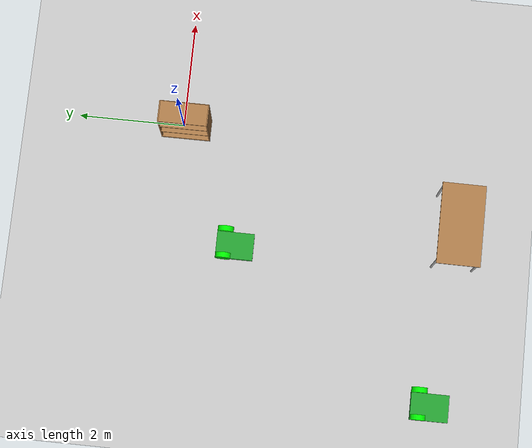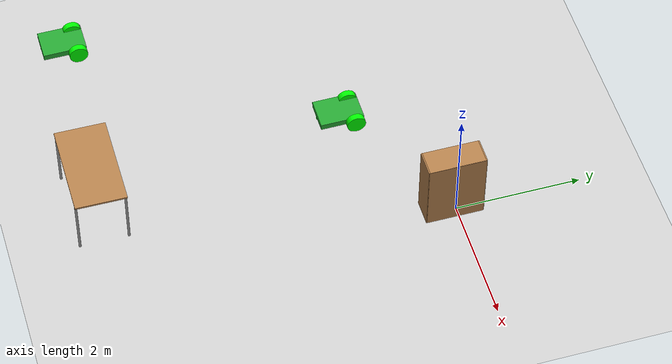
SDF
<sdf version="1.6">
 <world name="default">
  <model name="ground_plane">
   <static>1</static>
   <link name="link">
    <collision name="collision">
     <geometry><plane><normal>0 0 1</normal><size>100 100</size></plane></geometry>
     <surface>
      <contact><collide_bitmask>65535</collide_bitmask></contact>
      <friction><ode><mu>100</mu><mu2>50</mu2></ode></friction>
     </surface>
    </collision>
    <visual name="visual">
     <cast_shadows>0</cast_shadows>
     <geometry><plane><normal>0 0 1</normal><size>100 100</size></plane></geometry>
     <material>
      <script><uri>file://media/materials/scripts/gazebo.material</uri><name>Gazebo/Grey</name></script>
     </material>
    </visual>
   </link>
  </model>
  <model name="bookshelf">
   <static>1</static>
   <link name="link">
    <inertial><mass>1</mass></inertial>
    <collision name="back">
     <pose>0 0.005 0.6 0 -0 0</pose>
     <geometry><box><size>0.9 0.01 1.2</size></box></geometry>
    </collision>
    <visual name="visual1">
     <pose>0 0.005 0.6 0 -0 0</pose>
     <geometry><box><size>0.9 0.01 1.2</size></box></geometry>
     <material>
      <script><uri>file://media/materials/scripts/gazebo.material</uri><name>Gazebo/Wood</name></script>
     </material>
    </visual>
    <collision name="left_side">
     <pose>0.45 -0.195 0.6 0 -0 0</pose>
     <geometry><box><size>0.02 0.4 1.2</size></box></geometry>
    </collision>
    <visual name="visual2">
     <pose>0.45 -0.195 0.6 0 -0 0</pose>
     <geometry><box><size>0.02 0.4 1.2</size></box></geometry>
     <material>
      <script><uri>file://media/materials/scripts/gazebo.material</uri><name>Gazebo/Wood</name></script>
     </material>
    </visual>
    <collision name="right_side">
     <pose>-0.45 -0.195 0.6 0 -0 0</pose>
     <geometry><box><size>0.02 0.4 1.2</size></box></geometry>
    </collision>
    <visual name="visual3">
     <pose>-0.45 -0.195 0.6 0 -0 0</pose>
     <geometry><box><size>0.02 0.4 1.2</size></box></geometry>
     <material>
      <script><uri>file://media/materials/scripts/gazebo.material</uri><name>Gazebo/Wood</name></script>
     </material>
    </visual>
    <collision name="bottom">
     <pose>0 -0.195 0.03 0 -0 0</pose>
     <geometry><box><size>0.88 0.4 0.06</size></box></geometry>
    </collision>
    <visual name="visual4">
     <pose>0 -0.195 0.03 0 -0 0</pose>
     <geometry><box><size>0.88 0.4 0.06</size></box></geometry>
     <material>
      <script><uri>file://media/materials/scripts/gazebo.material</uri><name>Gazebo/Wood</name></script>
     </material>
    </visual>
    <collision name="top">
     <pose>0 -0.195 1.19 0 -0 0</pose>
     <geometry><box><size>0.88 0.4 0.02</size></box></geometry>
    </collision>
    <visual name="visual5">
     <pose>0 -0.195 1.19 0 -0 0</pose>
     <geometry><box><size>0.88 0.4 0.02</size></box></geometry>
     <material>
      <script><uri>file://media/materials/scripts/gazebo.material</uri><name>Gazebo/Wood</name></script>
     </material>
    </visual>
    <collision name="low_shelf">
     <pose>0 -0.195 0.43 0 -0 0</pose>
     <geometry><box><size>0.88 0.4 0.02</size></box></geometry>
    </collision>
    <visual name="visual6">
     <pose>0 -0.195 0.43 0 -0 0</pose>
     <geometry><box><size>0.88 0.4 0.02</size></box></geometry>
     <material>
      <script><uri>file://media/materials/scripts/gazebo.material</uri><name>Gazebo/Wood</name></script>
     </material>
    </visual>
    <collision name="high_shelf">
     <pose>0 -0.195 0.8 0 -0 0</pose>
     <geometry><box><size>0.88 0.4 0.02</size></box></geometry>
    </collision>
    <visual name="visual7">
     <pose>0 -0.195 0.8 0 -0 0</pose>
     <geometry><box><size>0.88 0.4 0.02</size></box></geometry>
     <material>
      <script><uri>file://media/materials/scripts/gazebo.material</uri><name>Gazebo/Wood</name></script>
     </material>
    </visual>
   </link>
   <pose>0.137664 -0.059568 0 0 0 -1.5707</pose>
  </model>
  <model name="table_clone">
   <static>1</static>
   <link name="link">
    <collision name="surface">
     <pose>0 0 1 0 -0 0</pose>
     <geometry><box><size>1.5 0.8 0.03</size></box></geometry>
     <surface><friction><ode><mu>0.6</mu><mu2>0.6</mu2></ode></friction></surface>
    </collision>
    <visual name="visual1">
     <pose>0 0 1 0 -0 0</pose>
     <geometry><box><size>1.5 0.8 0.03</size></box></geometry>
     <material>
      <script><uri>file://media/materials/scripts/gazebo.material</uri><name>Gazebo/Wood</name></script>
     </material>
    </visual>
    <collision name="front_left_leg">
     <pose>0.68 0.38 0.5 0 -0 0</pose>
     <geometry><cylinder><radius>0.02</radius><length>1</length></cylinder></geometry>
    </collision>
    <visual name="front_left_leg">
     <pose>0.68 0.38 0.5 0 -0 0</pose>
     <geometry><cylinder><radius>0.02</radius><length>1</length></cylinder></geometry>
     <material>
      <script><uri>file://media/materials/scripts/gazebo.material</uri><name>Gazebo/Grey</name></script>
     </material>
    </visual>
    <collision name="front_right_leg">
     <pose>0.68 -0.38 0.5 0 -0 0</pose>
     <geometry><cylinder><radius>0.02</radius><length>1</length></cylinder></geometry>
    </collision>
    <visual name="front_right_leg">
     <pose>0.68 -0.38 0.5 0 -0 0</pose>
     <geometry><cylinder><radius>0.02</radius><length>1</length></cylinder></geometry>
     <material>
      <script><uri>file://media/materials/scripts/gazebo.material</uri><name>Gazebo/Grey</name></script>
     </material>
    </visual>
    <collision name="back_right_leg">
     <pose>-0.68 -0.38 0.5 0 -0 0</pose>
     <geometry><cylinder><radius>0.02</radius><length>1</length></cylinder></geometry>
    </collision>
    <visual name="back_right_leg">
     <pose>-0.68 -0.38 0.5 0 -0 0</pose>
     <geometry><cylinder><radius>0.02</radius><length>1</length></cylinder></geometry>
     <material>
      <script><uri>file://media/materials/scripts/gazebo.material</uri><name>Gazebo/Grey</name></script>
     </material>
    </visual>
    <collision name="back_left_leg">
     <pose>-0.68 0.38 0.5 0 -0 0</pose>
     <geometry><cylinder><radius>0.02</radius><length>1</length></cylinder></geometry>
    </collision>
    <visual name="back_left_leg">
     <pose>-0.68 0.38 0.5 0 -0 0</pose>
     <geometry><cylinder><radius>0.02</radius><length>1</length></cylinder></geometry>
     <material>
      <script><uri>file://media/materials/scripts/gazebo.material</uri><name>Gazebo/Grey</name></script>
     </material>
    </visual>
   </link>
   <pose>-1.56994 -5.29085 0 0 -0 3.13504</pose>
  </model>
  <model name="wheeledrobotv2.sdf">
   <link name="link_1">
    <inertial>
     <mass>1</mass>
     <inertia>
      <ixx>0.166667</ixx>
      <ixy>0</ixy>
      <ixz>0</ixz>
      <iyy>0.166667</iyy>
      <iyz>0</iyz>
      <izz>0.166667</izz>
     </inertia>
    </inertial>
    <pose>-0.01381 -0.025371 -0.009991 0 -0 0</pose>
    <visual name="visual">
     <pose>0 0 0.05 0 -0 0</pose>
     <geometry><box><size>0.5 0.7 0.1</size></box></geometry>
     <material>
      <lighting>1</lighting>
      <script><uri>file://media/materials/scripts/gazebo.material</uri><name>Gazebo/Green</name></script>
      <shader type="vertex"><normal_map>__default__</normal_map></shader>
      <ambient>0.3 0.3 0.3 1</ambient>
      <diffuse>0 1 0 1</diffuse>
      <specular>0.01 0.01 0.01 1</specular>
      <emissive>0 0 0 1</emissive>
     </material>
    </visual>
    <collision name="collision">
     <geometry><box><size>0.5 0.7 0.1</size></box></geometry>
     <surface>
      <friction>
       <ode><mu>1</mu><mu2>1</mu2><fdir1>0 0 0</fdir1><slip1>0</slip1><slip2>0</slip2></ode>
       <torsional>
        <coefficient>1</coefficient>
        <patch_radius>0</patch_radius>
        <surface_radius>0</surface_radius>
        <use_patch_radius>1</use_patch_radius>
        <ode><slip>0</slip></ode>
       </torsional>
      </friction>
      <bounce><restitution_coefficient>0</restitution_coefficient><threshold>1e+06</threshold></bounce>
      <contact>
       <collide_without_contact>0</collide_without_contact>
       <collide_without_contact_bitmask>1</collide_without_contact_bitmask>
       <collide_bitmask>1</collide_bitmask>
       <ode>
        <soft_cfm>0</soft_cfm>
        <soft_erp>0.2</soft_erp>
        <kp>1e+13</kp>
        <kd>1</kd>
        <max_vel>0.01</max_vel>
        <min_depth>0</min_depth>
       </ode>
       <bullet>
        <split_impulse>1</split_impulse>
        <split_impulse_penetration_threshold>-0.01</split_impulse_penetration_threshold>
        <soft_cfm>0</soft_cfm>
        <soft_erp>0.2</soft_erp>
        <kp>1e+13</kp>
        <kd>1</kd>
       </bullet>
      </contact>
     </surface>
    </collision>
   </link>
   <link name="link_2">
    <inertial>
     <mass>1</mass>
     <inertia><ixx>0.145833</ixx><ixy>0</ixy><ixz>0</ixz><iyy>0.145833</iyy><iyz>0</iyz><izz>0.125</izz></inertia>
    </inertial>
    <pose>0.28631 0.174629 0.034973 0 1.57 0</pose>
    <visual name="visual">
     <geometry><cylinder><radius>0.15</radius><length>0.1</length></cylinder></geometry>
     <material>
      <lighting>1</lighting>
      <script><uri>file://media/materials/scripts/gazebo.material</uri><name>Gazebo/Grey</name></script>
      <shader type="vertex"><normal_map>__default__</normal_map></shader>
      <ambient>0.3 0.3 0.3 1</ambient>
      <diffuse>0 1 0 1</diffuse>
      <specular>0.01 0.01 0.01 1</specular>
      <emissive>0 0 0 1</emissive>
     </material>
    </visual>
    <collision name="collision">
     <geometry><cylinder><radius>0.15</radius><length>0.1</length></cylinder></geometry>
     <surface>
      <friction>
       <ode><mu>1</mu><mu2>1</mu2><fdir1>0 0 0</fdir1><slip1>0</slip1><slip2>0</slip2></ode>
       <torsional>
        <coefficient>1</coefficient>
        <patch_radius>0</patch_radius>
        <surface_radius>0</surface_radius>
        <use_patch_radius>1</use_patch_radius>
        <ode><slip>0</slip></ode>
       </torsional>
      </friction>
      <bounce><restitution_coefficient>0</restitution_coefficient><threshold>1e+06</threshold></bounce>
      <contact>
       <collide_without_contact>0</collide_without_contact>
       <collide_without_contact_bitmask>1</collide_without_contact_bitmask>
       <collide_bitmask>1</collide_bitmask>
       <ode>
        <soft_cfm>0</soft_cfm>
        <soft_erp>0.2</soft_erp>
        <kp>1e+13</kp>
        <kd>1</kd>
        <max_vel>0.01</max_vel>
        <min_depth>0</min_depth>
       </ode>
       <bullet>
        <split_impulse>1</split_impulse>
        <split_impulse_penetration_threshold>-0.01</split_impulse_penetration_threshold>
        <soft_cfm>0</soft_cfm>
        <soft_erp>0.2</soft_erp>
        <kp>1e+13</kp>
        <kd>1</kd>
       </bullet>
      </contact>
     </surface>
    </collision>
   </link>
   <link name="link_2_clone">
    <inertial>
     <mass>1</mass>
     <inertia><ixx>0.145833</ixx><ixy>0</ixy><ixz>0</ixz><iyy>0.145833</iyy><iyz>0</iyz><izz>0.125</izz></inertia>
    </inertial>
    <pose>-0.213691 0.176112 0.035009 0 1.57 0</pose>
    <visual name="visual">
     <geometry><cylinder><radius>0.15</radius><length>0.1</length></cylinder></geometry>
     <material>
      <lighting>1</lighting>
      <script><uri>file://media/materials/scripts/gazebo.material</uri><name>Gazebo/Grey</name></script>
      <shader type="vertex"><normal_map>__default__</normal_map></shader>
      <ambient>0.3 0.3 0.3 1</ambient>
      <diffuse>0 1 0 1</diffuse>
      <specular>0.01 0.01 0.01 1</specular>
      <emissive>0 0 0 1</emissive>
     </material>
    </visual>
    <collision name="collision">
     <geometry><cylinder><radius>0.15</radius><length>0.1</length></cylinder></geometry>
     <surface>
      <friction>
       <ode><mu>1</mu><mu2>1</mu2><fdir1>0 0 0</fdir1><slip1>0</slip1><slip2>0</slip2></ode>
       <torsional>
        <coefficient>1</coefficient>
        <patch_radius>0</patch_radius>
        <surface_radius>0</surface_radius>
        <use_patch_radius>1</use_patch_radius>
        <ode><slip>0</slip></ode>
       </torsional>
      </friction>
      <bounce><restitution_coefficient>0</restitution_coefficient><threshold>1e+06</threshold></bounce>
      <contact>
       <collide_without_contact>0</collide_without_contact>
       <collide_without_contact_bitmask>1</collide_without_contact_bitmask>
       <collide_bitmask>1</collide_bitmask>
       <ode>
        <soft_cfm>0</soft_cfm>
        <soft_erp>0.2</soft_erp>
        <kp>1e+13</kp>
        <kd>1</kd>
        <max_vel>0.01</max_vel>
        <min_depth>0</min_depth>
       </ode>
       <bullet>
        <split_impulse>1</split_impulse>
        <split_impulse_penetration_threshold>-0.01</split_impulse_penetration_threshold>
        <soft_cfm>0</soft_cfm>
        <soft_erp>0.2</soft_erp>
        <kp>1e+13</kp>
        <kd>1</kd>
       </bullet>
      </contact>
     </surface>
    </collision>
   </link>
   <link name="link_3">
    <inertial>
     <mass>1</mass>
     <inertia><ixx>0.1</ixx><ixy>0</ixy><ixz>0</ixz><iyy>0.1</iyy><iyz>0</iyz><izz>0.1</izz></inertia>
    </inertial>
    <pose>-0.058809 -0.325371 -0.059991 0 -0 0</pose>
    <visual name="visual">
     <geometry><sphere><radius>0.05</radius></sphere></geometry>
     <material>
      <lighting>1</lighting>
      <script><uri>file://media/materials/scripts/gazebo.material</uri><name>Gazebo/Grey</name></script>
      <shader type="vertex"><normal_map>__default__</normal_map></shader>
      <ambient>0.3 0.3 0.3 1</ambient>
      <diffuse>0 1 0 1</diffuse>
      <specular>0.01 0.01 0.01 1</specular>
      <emissive>0 0 0 1</emissive>
     </material>
    </visual>
    <collision name="collision">
     <geometry><sphere><radius>0.05</radius></sphere></geometry>
     <surface>
      <friction>
       <ode><mu>1</mu><mu2>1</mu2><fdir1>0 0 0</fdir1><slip1>0</slip1><slip2>0</slip2></ode>
       <torsional>
        <coefficient>1</coefficient>
        <patch_radius>0</patch_radius>
        <surface_radius>0</surface_radius>
        <use_patch_radius>1</use_patch_radius>
        <ode><slip>0</slip></ode>
       </torsional>
      </friction>
      <bounce><restitution_coefficient>0</restitution_coefficient><threshold>1e+06</threshold></bounce>
      <contact>
       <collide_without_contact>0</collide_without_contact>
       <collide_without_contact_bitmask>1</collide_without_contact_bitmask>
       <collide_bitmask>1</collide_bitmask>
       <ode>
        <soft_cfm>0</soft_cfm>
        <soft_erp>0.2</soft_erp>
        <kp>1e+13</kp>
        <kd>1</kd>
        <max_vel>0.01</max_vel>
        <min_depth>0</min_depth>
       </ode>
       <bullet>
        <split_impulse>1</split_impulse>
        <split_impulse_penetration_threshold>-0.01</split_impulse_penetration_threshold>
        <soft_cfm>0</soft_cfm>
        <soft_erp>0.2</soft_erp>
        <kp>1e+13</kp>
        <kd>1</kd>
       </bullet>
      </contact>
     </surface>
    </collision>
   </link>
   <joint name="link_1_JOINT_0" type="revolute">
    <parent>link_1</parent>
    <child>link_2</child>
    <axis>
     <xyz>1 0 0</xyz>
     <use_parent_model_frame>0</use_parent_model_frame>
     <limit>
      <lower>-1.79769e+308</lower>
      <upper>1.79769e+308</upper>
      <effort>-1</effort>
      <velocity>-1</velocity>
     </limit>
     <dynamics>
      <spring_reference>0</spring_reference>
      <spring_stiffness>0</spring_stiffness>
      <damping>0</damping>
     </dynamics>
    </axis>
    <physics>
     <ode><limit><cfm>0</cfm><erp>0.2</erp></limit><suspension><cfm>0</cfm><erp>0.2</erp></suspension></ode>
    </physics>
   </joint>
   <joint name="link_1_JOINT_1" type="revolute">
    <parent>link_1</parent>
    <child>link_2_clone</child>
    <axis>
     <xyz>1 0 0</xyz>
     <use_parent_model_frame>0</use_parent_model_frame>
     <limit>
      <lower>-1.79769e+308</lower>
      <upper>1.79769e+308</upper>
      <effort>-1</effort>
      <velocity>-1</velocity>
     </limit>
     <dynamics>
      <spring_reference>0</spring_reference>
      <spring_stiffness>0</spring_stiffness>
      <damping>0</damping>
     </dynamics>
    </axis>
    <physics>
     <ode><limit><cfm>0</cfm><erp>0.2</erp></limit><suspension><cfm>0</cfm><erp>0.2</erp></suspension></ode>
    </physics>
   </joint>
   <joint name="link_1_JOINT_2" type="ball">
    <parent>link_1</parent>
    <child>link_3</child>
    <physics>
     <ode><limit><cfm>0</cfm><erp>0.2</erp></limit><suspension><cfm>0</cfm><erp>0.2</erp></suspension></ode>
    </physics>
   </joint>
   <static>0</static>
   <pose>-4.85017 -5.03444 0.113251 0.010012 -0.000103 -0.000829</pose>
  </model>
  <model name="wheeledrobotv2.sdf_0">
   <link name="link_1">
    <inertial>
     <mass>1</mass>
     <inertia>
      <ixx>0.166667</ixx>
      <ixy>0</ixy>
      <ixz>0</ixz>
      <iyy>0.166667</iyy>
      <iyz>0</iyz>
      <izz>0.166667</izz>
     </inertia>
    </inertial>
    <pose>-0.01381 -0.025371 -0.009991 0 -0 0</pose>
    <visual name="visual">
     <pose>0 0 0.05 0 -0 0</pose>
     <geometry><box><size>0.5 0.7 0.1</size></box></geometry>
     <material>
      <lighting>1</lighting>
      <script><uri>file://media/materials/scripts/gazebo.material</uri><name>Gazebo/Green</name></script>
      <shader type="vertex"><normal_map>__default__</normal_map></shader>
      <ambient>0.3 0.3 0.3 1</ambient>
      <diffuse>0 1 0 1</diffuse>
      <specular>0.01 0.01 0.01 1</specular>
      <emissive>0 0 0 1</emissive>
     </material>
    </visual>
    <collision name="collision">
     <geometry><box><size>0.5 0.7 0.1</size></box></geometry>
     <surface>
      <friction>
       <ode><mu>1</mu><mu2>1</mu2><fdir1>0 0 0</fdir1><slip1>0</slip1><slip2>0</slip2></ode>
       <torsional>
        <coefficient>1</coefficient>
        <patch_radius>0</patch_radius>
        <surface_radius>0</surface_radius>
        <use_patch_radius>1</use_patch_radius>
        <ode><slip>0</slip></ode>
       </torsional>
      </friction>
      <bounce><restitution_coefficient>0</restitution_coefficient><threshold>1e+06</threshold></bounce>
      <contact>
       <collide_without_contact>0</collide_without_contact>
       <collide_without_contact_bitmask>1</collide_without_contact_bitmask>
       <collide_bitmask>1</collide_bitmask>
       <ode>
        <soft_cfm>0</soft_cfm>
        <soft_erp>0.2</soft_erp>
        <kp>1e+13</kp>
        <kd>1</kd>
        <max_vel>0.01</max_vel>
        <min_depth>0</min_depth>
       </ode>
       <bullet>
        <split_impulse>1</split_impulse>
        <split_impulse_penetration_threshold>-0.01</split_impulse_penetration_threshold>
        <soft_cfm>0</soft_cfm>
        <soft_erp>0.2</soft_erp>
        <kp>1e+13</kp>
        <kd>1</kd>
       </bullet>
      </contact>
     </surface>
    </collision>
   </link>
   <link name="link_2">
    <inertial>
     <mass>1</mass>
     <inertia><ixx>0.145833</ixx><ixy>0</ixy><ixz>0</ixz><iyy>0.145833</iyy><iyz>0</iyz><izz>0.125</izz></inertia>
    </inertial>
    <pose>0.28631 0.174629 0.034973 0 1.57 0</pose>
    <visual name="visual">
     <geometry><cylinder><radius>0.15</radius><length>0.1</length></cylinder></geometry>
     <material>
      <lighting>1</lighting>
      <script><uri>file://media/materials/scripts/gazebo.material</uri><name>Gazebo/Grey</name></script>
      <shader type="vertex"><normal_map>__default__</normal_map></shader>
      <ambient>0.3 0.3 0.3 1</ambient>
      <diffuse>0 1 0 1</diffuse>
      <specular>0.01 0.01 0.01 1</specular>
      <emissive>0 0 0 1</emissive>
     </material>
    </visual>
    <collision name="collision">
     <geometry><cylinder><radius>0.15</radius><length>0.1</length></cylinder></geometry>
     <surface>
      <friction>
       <ode><mu>1</mu><mu2>1</mu2><fdir1>0 0 0</fdir1><slip1>0</slip1><slip2>0</slip2></ode>
       <torsional>
        <coefficient>1</coefficient>
        <patch_radius>0</patch_radius>
        <surface_radius>0</surface_radius>
        <use_patch_radius>1</use_patch_radius>
        <ode><slip>0</slip></ode>
       </torsional>
      </friction>
      <bounce><restitution_coefficient>0</restitution_coefficient><threshold>1e+06</threshold></bounce>
      <contact>
       <collide_without_contact>0</collide_without_contact>
       <collide_without_contact_bitmask>1</collide_without_contact_bitmask>
       <collide_bitmask>1</collide_bitmask>
       <ode>
        <soft_cfm>0</soft_cfm>
        <soft_erp>0.2</soft_erp>
        <kp>1e+13</kp>
        <kd>1</kd>
        <max_vel>0.01</max_vel>
        <min_depth>0</min_depth>
       </ode>
       <bullet>
        <split_impulse>1</split_impulse>
        <split_impulse_penetration_threshold>-0.01</split_impulse_penetration_threshold>
        <soft_cfm>0</soft_cfm>
        <soft_erp>0.2</soft_erp>
        <kp>1e+13</kp>
        <kd>1</kd>
       </bullet>
      </contact>
     </surface>
    </collision>
   </link>
   <link name="link_2_clone">
    <inertial>
     <mass>1</mass>
     <inertia><ixx>0.145833</ixx><ixy>0</ixy><ixz>0</ixz><iyy>0.145833</iyy><iyz>0</iyz><izz>0.125</izz></inertia>
    </inertial>
    <pose>-0.213691 0.176112 0.035009 0 1.57 0</pose>
    <visual name="visual">
     <geometry><cylinder><radius>0.15</radius><length>0.1</length></cylinder></geometry>
     <material>
      <lighting>1</lighting>
      <script><uri>file://media/materials/scripts/gazebo.material</uri><name>Gazebo/Grey</name></script>
      <shader type="vertex"><normal_map>__default__</normal_map></shader>
      <ambient>0.3 0.3 0.3 1</ambient>
      <diffuse>0 1 0 1</diffuse>
      <specular>0.01 0.01 0.01 1</specular>
      <emissive>0 0 0 1</emissive>
     </material>
    </visual>
    <collision name="collision">
     <geometry><cylinder><radius>0.15</radius><length>0.1</length></cylinder></geometry>
     <surface>
      <friction>
       <ode><mu>1</mu><mu2>1</mu2><fdir1>0 0 0</fdir1><slip1>0</slip1><slip2>0</slip2></ode>
       <torsional>
        <coefficient>1</coefficient>
        <patch_radius>0</patch_radius>
        <surface_radius>0</surface_radius>
        <use_patch_radius>1</use_patch_radius>
        <ode><slip>0</slip></ode>
       </torsional>
      </friction>
      <bounce><restitution_coefficient>0</restitution_coefficient><threshold>1e+06</threshold></bounce>
      <contact>
       <collide_without_contact>0</collide_without_contact>
       <collide_without_contact_bitmask>1</collide_without_contact_bitmask>
       <collide_bitmask>1</collide_bitmask>
       <ode>
        <soft_cfm>0</soft_cfm>
        <soft_erp>0.2</soft_erp>
        <kp>1e+13</kp>
        <kd>1</kd>
        <max_vel>0.01</max_vel>
        <min_depth>0</min_depth>
       </ode>
       <bullet>
        <split_impulse>1</split_impulse>
        <split_impulse_penetration_threshold>-0.01</split_impulse_penetration_threshold>
        <soft_cfm>0</soft_cfm>
        <soft_erp>0.2</soft_erp>
        <kp>1e+13</kp>
        <kd>1</kd>
       </bullet>
      </contact>
     </surface>
    </collision>
   </link>
   <link name="link_3">
    <inertial>
     <mass>1</mass>
     <inertia><ixx>0.1</ixx><ixy>0</ixy><ixz>0</ixz><iyy>0.1</iyy><iyz>0</iyz><izz>0.1</izz></inertia>
    </inertial>
    <pose>-0.058809 -0.325371 -0.059991 0 -0 0</pose>
    <visual name="visual">
     <geometry><sphere><radius>0.05</radius></sphere></geometry>
     <material>
      <lighting>1</lighting>
      <script><uri>file://media/materials/scripts/gazebo.material</uri><name>Gazebo/Grey</name></script>
      <shader type="vertex"><normal_map>__default__</normal_map></shader>
      <ambient>0.3 0.3 0.3 1</ambient>
      <diffuse>0 1 0 1</diffuse>
      <specular>0.01 0.01 0.01 1</specular>
      <emissive>0 0 0 1</emissive>
     </material>
    </visual>
    <collision name="collision">
     <geometry><sphere><radius>0.05</radius></sphere></geometry>
     <surface>
      <friction>
       <ode><mu>1</mu><mu2>1</mu2><fdir1>0 0 0</fdir1><slip1>0</slip1><slip2>0</slip2></ode>
       <torsional>
        <coefficient>1</coefficient>
        <patch_radius>0</patch_radius>
        <surface_radius>0</surface_radius>
        <use_patch_radius>1</use_patch_radius>
        <ode><slip>0</slip></ode>
       </torsional>
      </friction>
      <bounce><restitution_coefficient>0</restitution_coefficient><threshold>1e+06</threshold></bounce>
      <contact>
       <collide_without_contact>0</collide_without_contact>
       <collide_without_contact_bitmask>1</collide_without_contact_bitmask>
       <collide_bitmask>1</collide_bitmask>
       <ode>
        <soft_cfm>0</soft_cfm>
        <soft_erp>0.2</soft_erp>
        <kp>1e+13</kp>
        <kd>1</kd>
        <max_vel>0.01</max_vel>
        <min_depth>0</min_depth>
       </ode>
       <bullet>
        <split_impulse>1</split_impulse>
        <split_impulse_penetration_threshold>-0.01</split_impulse_penetration_threshold>
        <soft_cfm>0</soft_cfm>
        <soft_erp>0.2</soft_erp>
        <kp>1e+13</kp>
        <kd>1</kd>
       </bullet>
      </contact>
     </surface>
    </collision>
   </link>
   <joint name="link_1_JOINT_0" type="revolute">
    <parent>link_1</parent>
    <child>link_2</child>
    <axis>
     <xyz>1 0 0</xyz>
     <use_parent_model_frame>0</use_parent_model_frame>
     <limit>
      <lower>-1.79769e+308</lower>
      <upper>1.79769e+308</upper>
      <effort>-1</effort>
      <velocity>-1</velocity>
     </limit>
     <dynamics>
      <spring_reference>0</spring_reference>
      <spring_stiffness>0</spring_stiffness>
      <damping>0</damping>
     </dynamics>
    </axis>
    <physics>
     <ode><limit><cfm>0</cfm><erp>0.2</erp></limit><suspension><cfm>0</cfm><erp>0.2</erp></suspension></ode>
    </physics>
   </joint>
   <joint name="link_1_JOINT_1" type="revolute">
    <parent>link_1</parent>
    <child>link_2_clone</child>
    <axis>
     <xyz>1 0 0</xyz>
     <use_parent_model_frame>0</use_parent_model_frame>
     <limit>
      <lower>-1.79769e+308</lower>
      <upper>1.79769e+308</upper>
      <effort>-1</effort>
      <velocity>-1</velocity>
     </limit>
     <dynamics>
      <spring_reference>0</spring_reference>
      <spring_stiffness>0</spring_stiffness>
      <damping>0</damping>
     </dynamics>
    </axis>
    <physics>
     <ode><limit><cfm>0</cfm><erp>0.2</erp></limit><suspension><cfm>0</cfm><erp>0.2</erp></suspension></ode>
    </physics>
   </joint>
   <joint name="link_1_JOINT_2" type="ball">
    <parent>link_1</parent>
    <child>link_3</child>
    <physics>
     <ode><limit><cfm>0</cfm><erp>0.2</erp></limit><suspension><cfm>0</cfm><erp>0.2</erp></suspension></ode>
    </physics>
   </joint>
   <static>0</static>
   <pose>-2.22846 -1.18501 0.113251 0.010011 -0.000102 -0.000715</pose>
  </model>
 </world>
</sdf>
